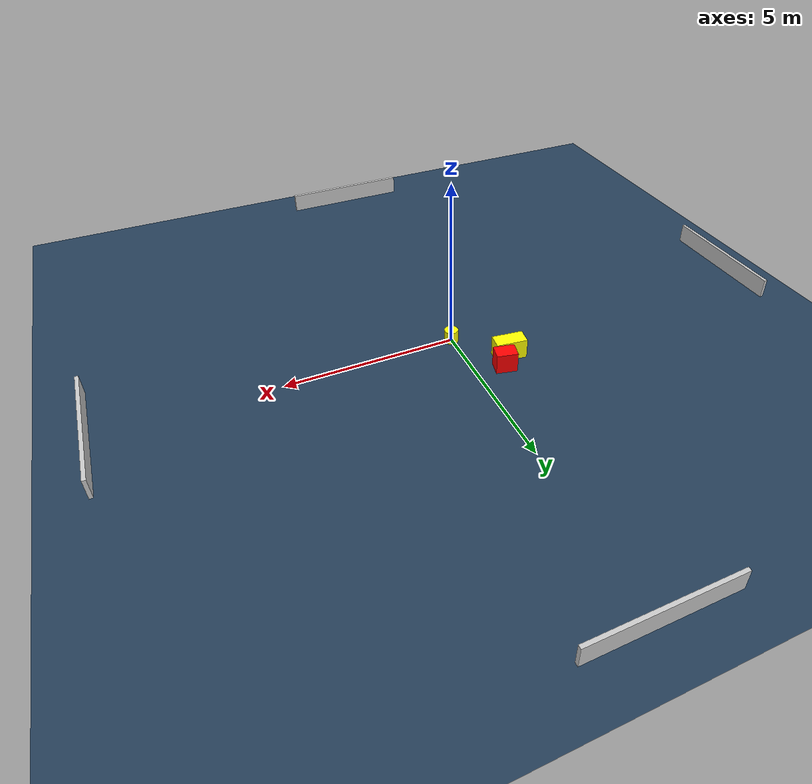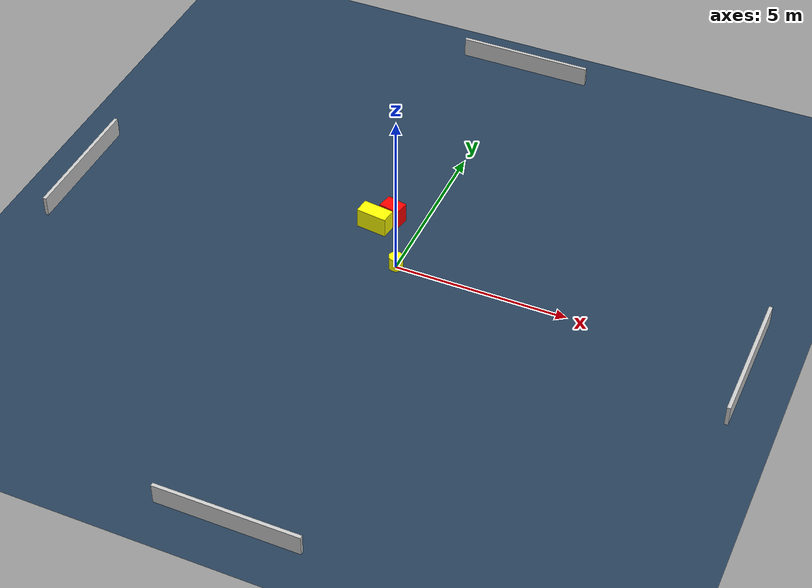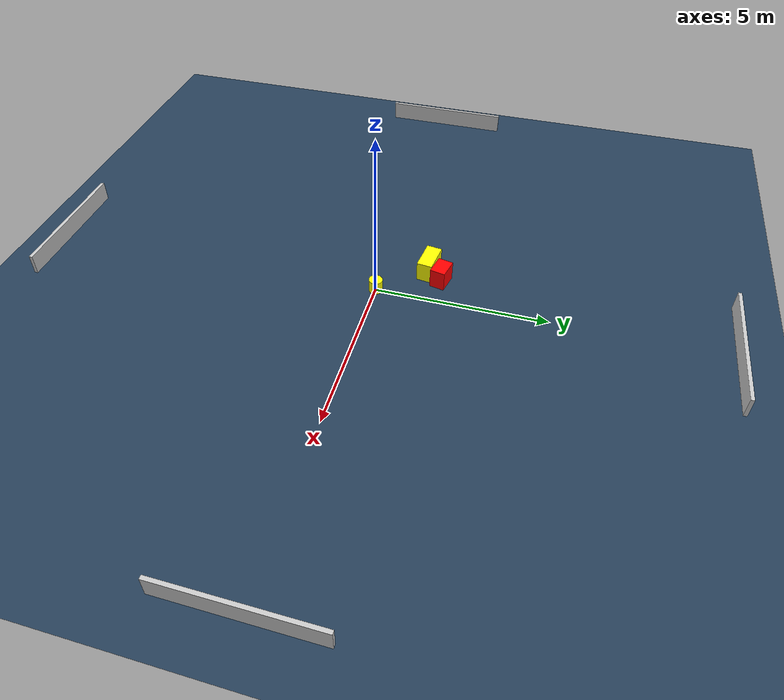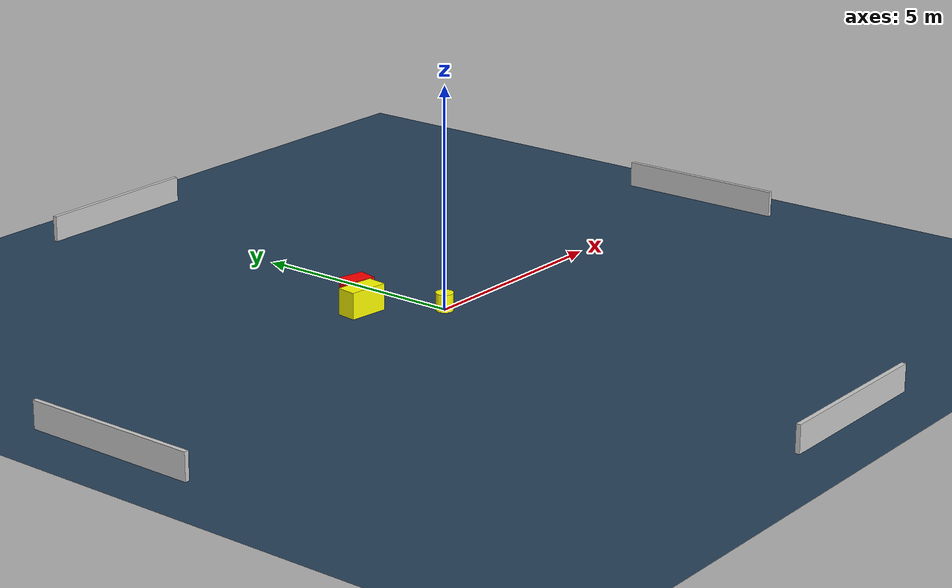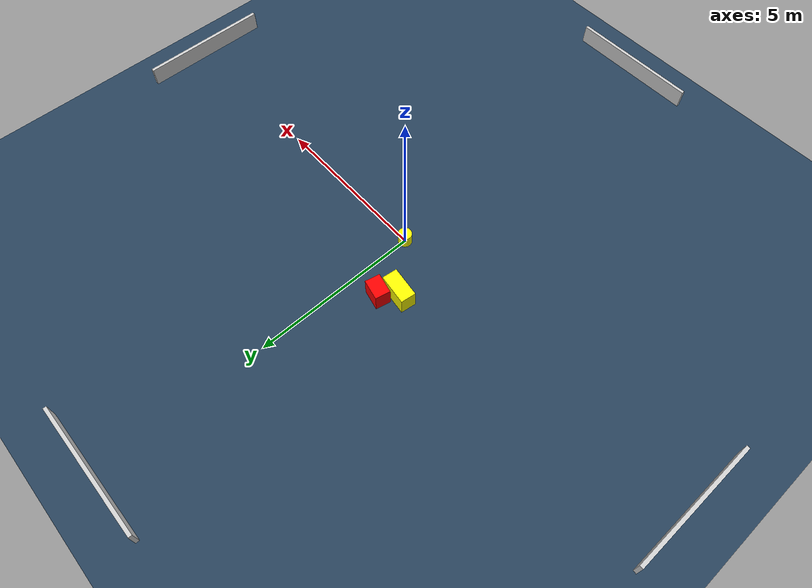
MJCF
<?xml version="1.0" ?>
<mujoco model="generated_environment">
  <option timestep="0.01" integrator="RK4" cone="elliptic"/>
  <default>
    <geom density="1"/>
  </default>
  <asset>
    <texture builtin="gradient" height="3072" name="skybox" rgb1="0.3 0.5 0.7" rgb2="0 0 0" type="skybox" width="512"/>
    <texture builtin="checker" height="300" name="groundplane" rgb1="0.2 0.3 0.4" rgb2="0.1 0.2 0.3" type="2d" width="300"/>
    <material name="groundplane" reflectance="0.2" texrepeat="5 5" texture="groundplane"/>
  </asset>
  <worldbody>
    <light dir="0 0 -1" directional="true" pos="0 0 1.5"/>
    <geom condim="3" friction="0.5 0.005 0.001" material="groundplane" name="floor" pos="0 0 0" size="0 0 0.05" type="plane"/>
    <body name="walls">
      <geom name="wall_1" condim="4" pos="-10.0 0.0 0.3" rgba="0.800000011920929 0.800000011920929 0.800000011920929 1.0" size="0.05 2.0 0.3" type="box"/>
      <geom name="wall_2" condim="4" pos="10.0 0.0 0.3" rgba="0.800000011920929 0.800000011920929 0.800000011920929 1.0" size="0.05 2.0 0.3" type="box"/>
      <geom name="wall_3" condim="4" pos="0.0 -10.0 0.3" rgba="0.800000011920929 0.800000011920929 0.800000011920929 1.0" size="2.0 0.05 0.3" type="box"/>
      <geom name="wall_4" condim="4" pos="0.0 10.0 0.3" rgba="0.800000011920929 0.800000011920929 0.800000011920929 1.0" size="2.0 0.05 0.3" type="box"/>
    </body>
    <body name="robot">
      <joint name="joint_x" type="slide" pos="0 0 0" axis="1 0 0"/>
      <joint name="joint_y" type="slide" pos="0 0 0" axis="0 1 0"/>
      <geom name="robot" type="cylinder" pos="0.0 0.0 0.2" size="0.2 0.2 0.0" mass="5.0" friction="1.0 0.005 0.0001" condim="4" rgba="1.0 1.0 0.0 1.0"/>
    </body>
    <body name="obstacle_1_movable">
      <geom name="obstacle_1_movable" condim="4" pos="-1.217866014108992 1.3067233346106581 0.3" euler="0 0 82.82784771966979" friction="0.0 0.005 0.001" rgba="1.0 1.0 0.0 1.0" size="0.22545906287947237 0.4541758598650827 0.3" type="box" mass="0.1"/>
      <joint type="free"/>
    </body>
    <body name="obstacle_2_static">
      <geom name="obstacle_2_static" condim="4" pos="-0.8574834922563455 1.7490104616421807 0.3" euler="0 0 257.48365779168444" friction="0.0 0.005 0.001" rgba="1.0 0.0 0.0 1.0" size="0.22302879652316163 0.30416434320913194 0.3" type="box"/>
    </body>
  </worldbody>
  <actuator>
    <motor name="actuator_x" joint="joint_x" gear="1" ctrlrange="-1 1"/>
    <motor name="actuator_y" joint="joint_y" gear="1" ctrlrange="-1 1"/>
  </actuator>
</mujoco>
